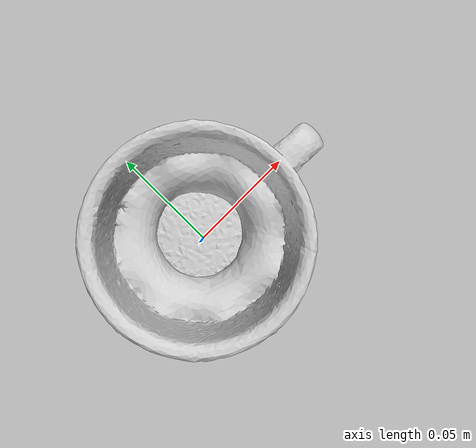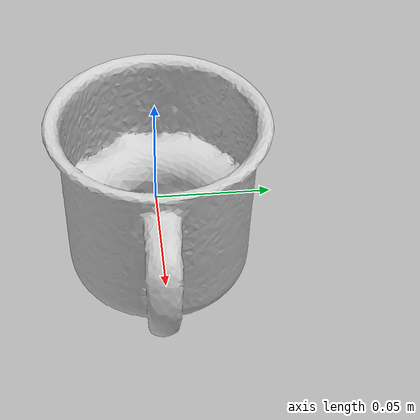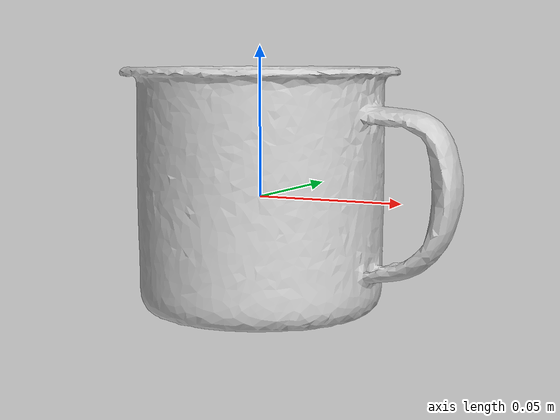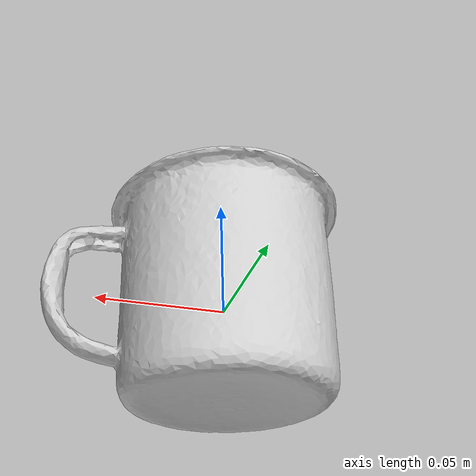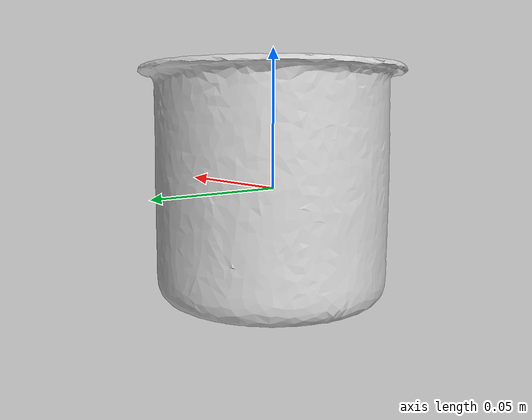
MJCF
<mujoco model="textured_centered">
  <default>
    <default class="visual">
      <geom group="2" type="mesh" contype="0" conaffinity="0"/>
    </default>
    <default class="collision">
      <geom group="3" type="mesh"/>
    </default>
  </default>
  <asset>
    <material name="material_0.003" specular="0.0" shininess="0.0" rgba="0.800000 0.800000 0.800000 1.000000"/>
    <mesh file="textured_centered.obj"/>
    <mesh file="textured_centered_collision_0.obj"/>
    <mesh file="textured_centered_collision_1.obj"/>
    <mesh file="textured_centered_collision_2.obj"/>
    <mesh file="textured_centered_collision_3.obj"/>
    <mesh file="textured_centered_collision_4.obj"/>
    <mesh file="textured_centered_collision_5.obj"/>
    <mesh file="textured_centered_collision_6.obj"/>
    <mesh file="textured_centered_collision_7.obj"/>
    <mesh file="textured_centered_collision_8.obj"/>
    <mesh file="textured_centered_collision_9.obj"/>
    <mesh file="textured_centered_collision_10.obj"/>
    <mesh file="textured_centered_collision_11.obj"/>
    <mesh file="textured_centered_collision_12.obj"/>
    <mesh file="textured_centered_collision_13.obj"/>
    <mesh file="textured_centered_collision_14.obj"/>
    <mesh file="textured_centered_collision_15.obj"/>
    <mesh file="textured_centered_collision_16.obj"/>
    <mesh file="textured_centered_collision_17.obj"/>
    <mesh file="textured_centered_collision_18.obj"/>
    <mesh file="textured_centered_collision_19.obj"/>
  </asset>
  <worldbody>
    <body name="textured_centered">
      <geom material="material_0.003" mesh="textured_centered" class="visual"/>
      <geom mesh="textured_centered_collision_0" rgba="0.018546921856810283 0.996978244184391 0.9317525942310414 1" class="collision"/>
      <geom mesh="textured_centered_collision_1" rgba="0.5907386777555943 0.3036907253584752 0.977751169338719 1" class="collision"/>
      <geom mesh="textured_centered_collision_2" rgba="0.5095840717075915 0.2112452914214027 0.012107988713924045 1" class="collision"/>
      <geom mesh="textured_centered_collision_3" rgba="0.7408811344614268 0.5741413885606346 0.11326316103742862 1" class="collision"/>
      <geom mesh="textured_centered_collision_4" rgba="0.35716097007674374 0.19674970373021494 0.9124646873947759 1" class="collision"/>
      <geom mesh="textured_centered_collision_5" rgba="0.86956424937471 0.26318880880054585 0.12695975781203872 1" class="collision"/>
      <geom mesh="textured_centered_collision_6" rgba="0.2767677188302705 0.6584489443693072 0.3592496099348119 1" class="collision"/>
      <geom mesh="textured_centered_collision_7" rgba="0.4997281024930056 0.06449357799216271 0.8992716690738705 1" class="collision"/>
      <geom mesh="textured_centered_collision_8" rgba="0.30234100692454147 0.6769640953096773 0.025022367434646697 1" class="collision"/>
      <geom mesh="textured_centered_collision_9" rgba="0.43203882352405076 0.22394134168834523 0.3495165806991446 1" class="collision"/>
      <geom mesh="textured_centered_collision_10" rgba="0.016869054568748876 0.7668788276154531 0.8397596061787018 1" class="collision"/>
      <geom mesh="textured_centered_collision_11" rgba="0.19474399878160276 0.3432469814597462 0.3295411292155277 1" class="collision"/>
      <geom mesh="textured_centered_collision_12" rgba="0.7713559649801682 0.6068837361828644 0.9913990531507113 1" class="collision"/>
      <geom mesh="textured_centered_collision_13" rgba="0.5749638613561783 0.2808946091064026 0.7251827423982128 1" class="collision"/>
      <geom mesh="textured_centered_collision_14" rgba="0.7738636015474465 0.2465142295978514 0.038643591116009235 1" class="collision"/>
      <geom mesh="textured_centered_collision_15" rgba="0.1652255639529232 0.36391488096386726 0.09822252283225341 1" class="collision"/>
      <geom mesh="textured_centered_collision_16" rgba="0.3064292520702777 0.16037250177702778 0.3045600956543788 1" class="collision"/>
      <geom mesh="textured_centered_collision_17" rgba="0.7448963562860712 0.7113904952712753 0.977866307005526 1" class="collision"/>
      <geom mesh="textured_centered_collision_18" rgba="0.8935785289668379 0.13173451925252377 0.8390717775834114 1" class="collision"/>
      <geom mesh="textured_centered_collision_19" rgba="0.8735437158664121 0.865990517824321 0.6514348940199288 1" class="collision"/>
    </body>
  </worldbody>
</mujoco>
